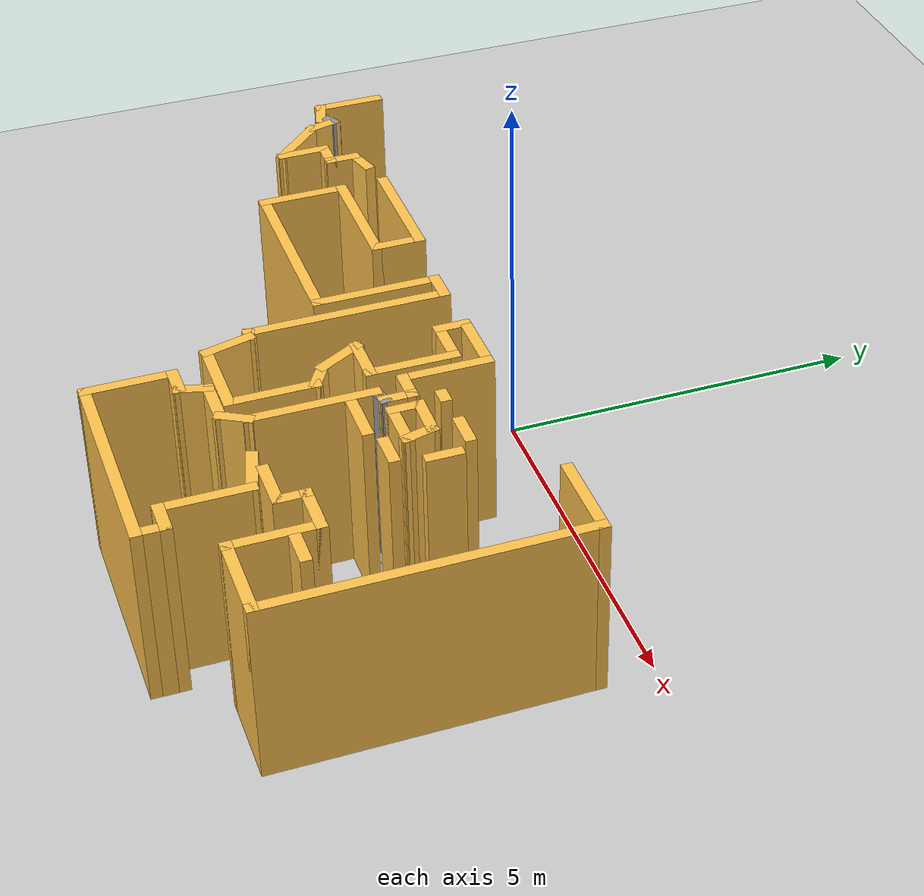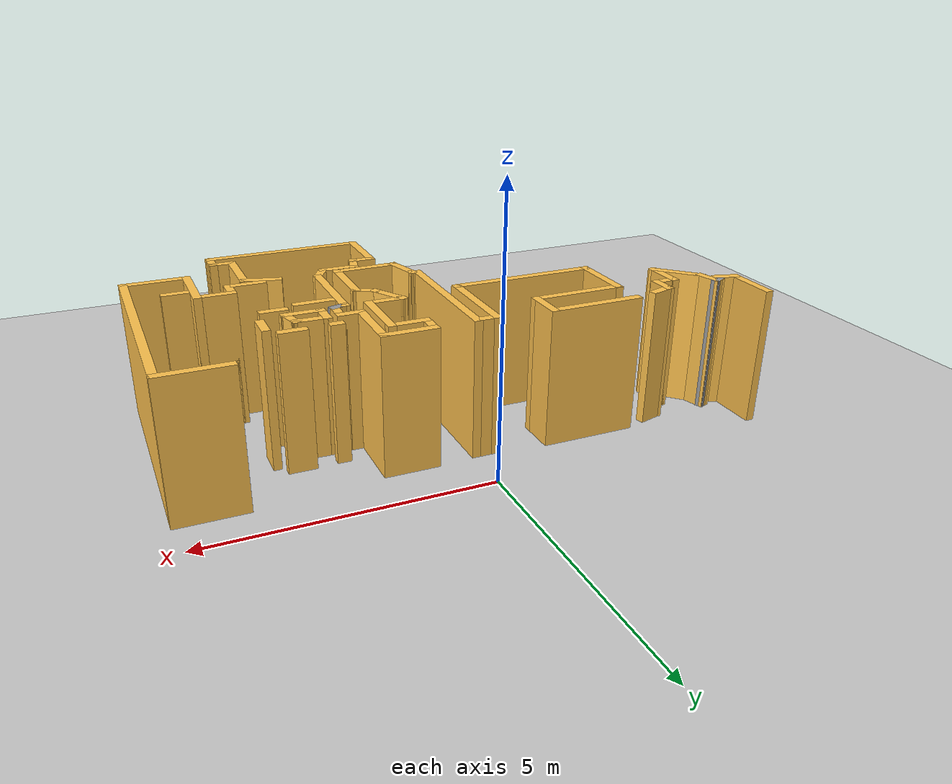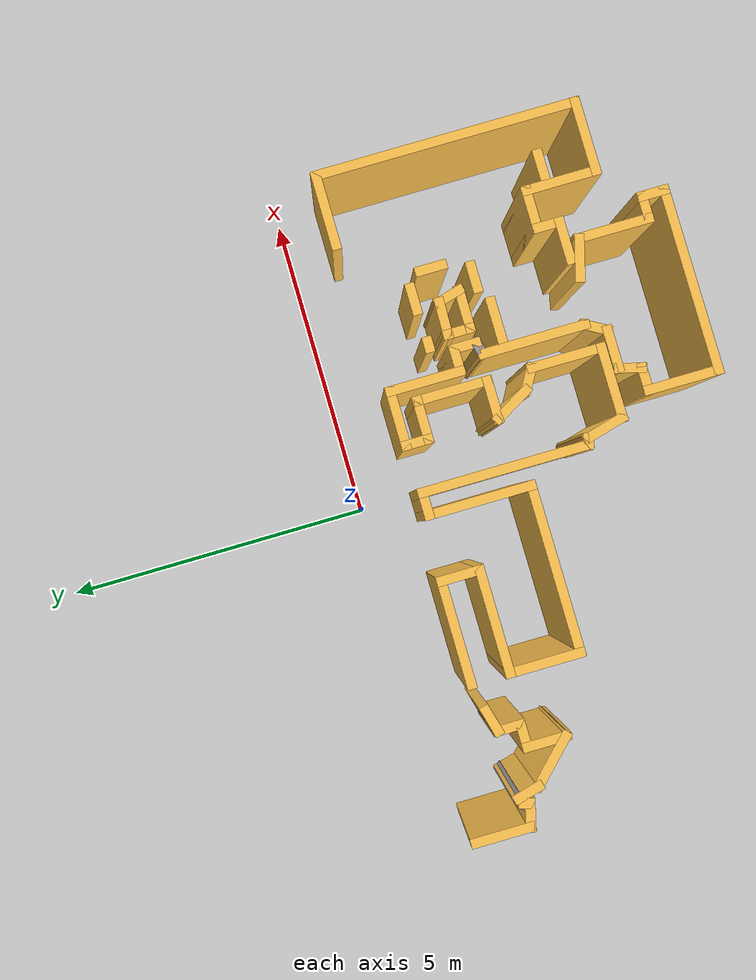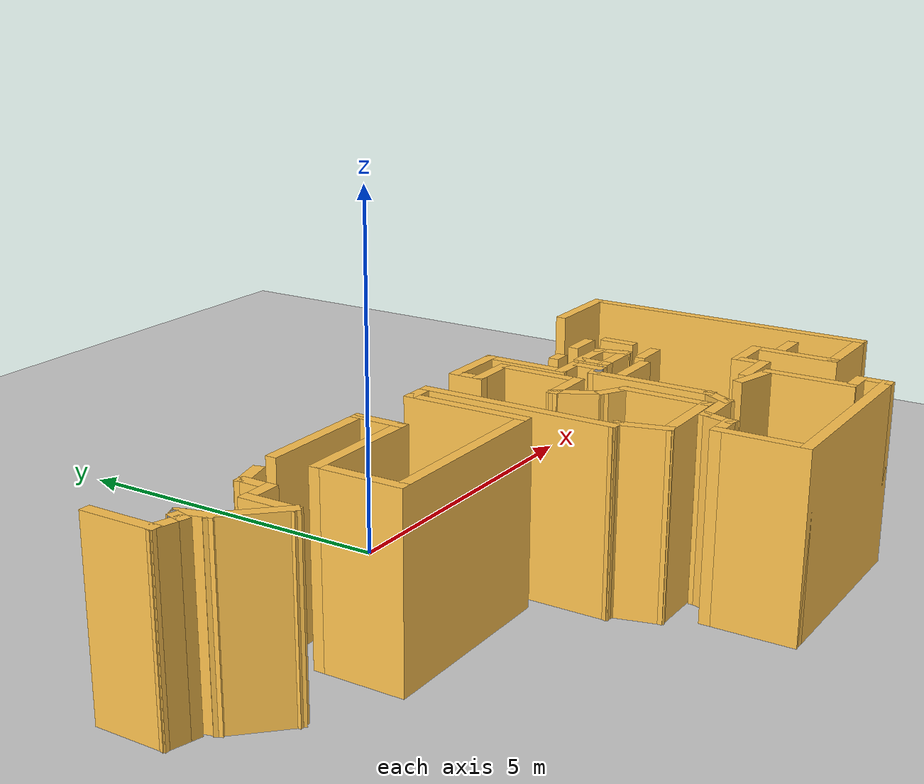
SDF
<sdf version="1.6">
 <world name="default">
  <model name="ground_plane">
   <static>1</static>
   <link name="link">
    <collision name="collision">
     <geometry><plane><normal>0 0 1</normal><size>100 100</size></plane></geometry>
     <surface>
      <contact><collide_bitmask>65535</collide_bitmask></contact>
      <friction><ode><mu>100</mu><mu2>50</mu2></ode></friction>
     </surface>
    </collision>
    <visual name="visual">
     <cast_shadows>0</cast_shadows>
     <geometry><plane><normal>0 0 1</normal><size>100 100</size></plane></geometry>
     <material>
      <script><uri>file://media/materials/scripts/gazebo.material</uri><name>Gazebo/Grey</name></script>
     </material>
    </visual>
   </link>
  </model>
  <model name="map_21">
   <pose>-0.097763 -0.060898 0 0 -0 0</pose>
   <link name="Wall_102">
    <collision name="Wall_102_Collision">
     <geometry><box><size>3 0.15 2.5</size></box></geometry>
     <pose>0 0 1.25 0 -0 0</pose>
    </collision>
    <visual name="Wall_102_Visual">
     <pose>0 0 1.25 0 -0 0</pose>
     <geometry><box><size>3 0.15 2.5</size></box></geometry>
     <material>
      <script><uri>file://media/materials/scripts/gazebo.material</uri><name>Gazebo/Grey</name></script>
      <ambient>1 0.764706 0.305882 1</ambient>
     </material>
     <meta><layer>0</layer></meta>
    </visual>
    <pose>2.05029 -5.6843 0 0 -0 0</pose>
   </link>
   <link name="Wall_103">
    <collision name="Wall_103_Collision">
     <geometry><box><size>0.5 0.15 2.5</size></box></geometry>
     <pose>0 0 1.25 0 -0 0</pose>
    </collision>
    <visual name="Wall_103_Visual">
     <pose>0 0 1.25 0 -0 0</pose>
     <geometry><box><size>0.5 0.15 2.5</size></box></geometry>
     <material>
      <script><uri>file://media/materials/scripts/gazebo.material</uri><name>Gazebo/Grey</name></script>
      <ambient>1 0.764706 0.305882 1</ambient>
     </material>
     <meta><layer>0</layer></meta>
    </visual>
    <pose>3.47528 -5.5093 0 0 -0 1.5708</pose>
   </link>
   <link name="Wall_104">
    <collision name="Wall_104_Collision">
     <geometry><box><size>0.5 0.15 2.5</size></box></geometry>
     <pose>0 0 1.25 0 -0 0</pose>
    </collision>
    <visual name="Wall_104_Visual">
     <pose>0 0 1.25 0 -0 0</pose>
     <geometry><box><size>0.5 0.15 2.5</size></box></geometry>
     <material>
      <script><uri>file://media/materials/scripts/gazebo.material</uri><name>Gazebo/Grey</name></script>
      <ambient>1 0.764706 0.305882 1</ambient>
     </material>
     <meta><layer>0</layer></meta>
    </visual>
    <pose>3.30029 -5.3343 0 0 -0 3.14159</pose>
   </link>
   <link name="Wall_107">
    <collision name="Wall_107_Collision">
     <geometry><box><size>1.25 0.15 2.5</size></box></geometry>
     <pose>0 0 1.25 0 -0 0</pose>
    </collision>
    <visual name="Wall_107_Visual">
     <pose>0 0 1.25 0 -0 0</pose>
     <geometry><box><size>1.25 0.15 2.5</size></box></geometry>
     <material>
      <script><uri>file://media/materials/scripts/gazebo.material</uri><name>Gazebo/Grey</name></script>
      <ambient>1 0.764706 0.305882 1</ambient>
     </material>
     <meta><layer>0</layer></meta>
    </visual>
    <pose>3.12528 -4.7843 0 0 -0 1.5708</pose>
   </link>
   <link name="Wall_108">
    <collision name="Wall_108_Collision">
     <geometry><box><size>0.75 0.15 2.5</size></box></geometry>
     <pose>0 0 1.25 0 -0 0</pose>
    </collision>
    <visual name="Wall_108_Visual">
     <pose>0 0 1.25 0 -0 0</pose>
     <geometry><box><size>0.75 0.15 2.5</size></box></geometry>
     <material>
      <script><uri>file://media/materials/scripts/gazebo.material</uri><name>Gazebo/Grey</name></script>
      <ambient>1 0.764706 0.305882 1</ambient>
     </material>
     <meta><layer>0</layer></meta>
    </visual>
    <pose>2.83551 -4.15666 0 0 -0 2.87979</pose>
   </link>
   <link name="Wall_110">
    <collision name="Wall_110_Collision">
     <geometry><box><size>0.75 0.15 2.5</size></box></geometry>
     <pose>0 0 1.25 0 -0 0</pose>
    </collision>
    <visual name="Wall_110_Visual">
     <pose>0 0 1.25 0 -0 0</pose>
     <geometry><box><size>0.75 0.15 2.5</size></box></geometry>
     <material>
      <script><uri>file://media/materials/scripts/gazebo.material</uri><name>Gazebo/Grey</name></script>
      <ambient>1 0.764706 0.305882 1</ambient>
     </material>
     <meta><layer>0</layer></meta>
    </visual>
    <pose>3.14776 -4.0215 0 0 -0 0</pose>
   </link>
   <link name="Wall_114">
    <collision name="Wall_114_Collision">
     <geometry><box><size>0.5 0.15 2.5</size></box></geometry>
     <pose>0 0 1.25 0 -0 0</pose>
    </collision>
    <visual name="Wall_114_Visual">
     <pose>0 0 1.25 0 -0 0</pose>
     <geometry><box><size>0.5 0.15 2.5</size></box></geometry>
     <material>
      <script><uri>file://media/materials/scripts/gazebo.material</uri><name>Gazebo/Grey</name></script>
      <ambient>1 0.764706 0.305882 1</ambient>
     </material>
     <meta><layer>0</layer></meta>
    </visual>
    <pose>3.44776 -3.8465 0 0 -0 1.5708</pose>
   </link>
   <link name="Wall_115">
    <collision name="Wall_115_Collision">
     <geometry><box><size>0.75 0.15 2.5</size></box></geometry>
     <pose>0 0 1.25 0 -0 0</pose>
    </collision>
    <visual name="Wall_115_Visual">
     <pose>0 0 1.25 0 -0 0</pose>
     <geometry><box><size>0.75 0.15 2.5</size></box></geometry>
     <material>
      <script><uri>file://media/materials/scripts/gazebo.material</uri><name>Gazebo/Grey</name></script>
      <ambient>1 0.764706 0.305882 1</ambient>
     </material>
     <meta><layer>0</layer></meta>
    </visual>
    <pose>3.74776 -3.6715 0 0 -0 0</pose>
   </link>
   <link name="Wall_116">
    <collision name="Wall_116_Collision">
     <geometry><box><size>1.25 0.15 2.5</size></box></geometry>
     <pose>0 0 1.25 0 -0 0</pose>
    </collision>
    <visual name="Wall_116_Visual">
     <pose>0 0 1.25 0 -0 0</pose>
     <geometry><box><size>1.25 0.15 2.5</size></box></geometry>
     <material>
      <script><uri>file://media/materials/scripts/gazebo.material</uri><name>Gazebo/Grey</name></script>
      <ambient>1 0.764706 0.305882 1</ambient>
     </material>
     <meta><layer>0</layer></meta>
    </visual>
    <pose>4.04776 -4.2215 0 0 -0 -1.5708</pose>
   </link>
   <link name="Wall_117">
    <collision name="Wall_117_Collision">
     <geometry><box><size>1.25 0.15 2.5</size></box></geometry>
     <pose>0 0 1.25 0 -0 0</pose>
    </collision>
    <visual name="Wall_117_Visual">
     <pose>0 0 1.25 0 -0 0</pose>
     <geometry><box><size>1.25 0.15 2.5</size></box></geometry>
     <material>
      <script><uri>file://media/materials/scripts/gazebo.material</uri><name>Gazebo/Grey</name></script>
      <ambient>1 0.764706 0.305882 1</ambient>
     </material>
     <meta><layer>0</layer></meta>
    </visual>
    <pose>4.59776 -4.7715 0 0 -0 0</pose>
   </link>
   <link name="Wall_118">
    <collision name="Wall_118_Collision">
     <geometry><box><size>4.25 0.15 2.5</size></box></geometry>
     <pose>0 0 1.25 0 -0 0</pose>
    </collision>
    <visual name="Wall_118_Visual">
     <pose>0 0 1.25 0 -0 0</pose>
     <geometry><box><size>4.25 0.15 2.5</size></box></geometry>
     <material>
      <script><uri>file://media/materials/scripts/gazebo.material</uri><name>Gazebo/Grey</name></script>
      <ambient>1 0.764706 0.305882 1</ambient>
     </material>
     <meta><layer>0</layer></meta>
    </visual>
    <pose>5.14776 -2.7215 0 0 -0 1.5708</pose>
   </link>
   <link name="Wall_119">
    <collision name="Wall_119_Collision">
     <geometry><box><size>1.25 0.15 2.5</size></box></geometry>
     <pose>0 0 1.25 0 -0 0</pose>
    </collision>
    <visual name="Wall_119_Visual">
     <pose>0 0 1.25 0 -0 0</pose>
     <geometry><box><size>1.25 0.15 2.5</size></box></geometry>
     <material>
      <script><uri>file://media/materials/scripts/gazebo.material</uri><name>Gazebo/Grey</name></script>
      <ambient>1 0.764706 0.305882 1</ambient>
     </material>
     <meta><layer>0</layer></meta>
    </visual>
    <pose>4.59776 -0.671496 0 0 -0 3.14159</pose>
   </link>
   <link name="Wall_161">
    <collision name="Wall_161_Collision">
     <geometry><box><size>0.75 0.15 2.5</size></box></geometry>
     <pose>0 0 1.25 0 -0 0</pose>
    </collision>
    <visual name="Wall_161_Visual">
     <pose>0 0 1.25 0 -0 0</pose>
     <geometry><box><size>0.75 0.15 2.5</size></box></geometry>
     <material>
      <script><uri>file://media/materials/scripts/gazebo.material</uri><name>Gazebo/Grey</name></script>
      <ambient>1 0.764706 0.305882 1</ambient>
     </material>
     <meta><layer>0</layer></meta>
    </visual>
    <pose>2.2688 -2.67992 0 0 -0 0</pose>
   </link>
   <link name="Wall_163">
    <collision name="Wall_163_Collision">
     <geometry><box><size>0.5 0.15 2.5</size></box></geometry>
     <pose>0 0 1.25 0 -0 0</pose>
    </collision>
    <visual name="Wall_163_Visual">
     <pose>0 0 1.25 0 -0 0</pose>
     <geometry><box><size>0.5 0.15 2.5</size></box></geometry>
     <material>
      <script><uri>file://media/materials/scripts/gazebo.material</uri><name>Gazebo/Grey</name></script>
      <ambient>1 0.764706 0.305882 1</ambient>
     </material>
     <meta><layer>0</layer></meta>
    </visual>
    <pose>2.99963 -2.54114 0 0 -0 0</pose>
   </link>
   <link name="Wall_165">
    <collision name="Wall_165_Collision">
     <geometry><box><size>0.5 0.15 2.5</size></box></geometry>
     <pose>0 0 1.25 0 -0 0</pose>
    </collision>
    <visual name="Wall_165_Visual">
     <pose>0 0 1.25 0 -0 0</pose>
     <geometry><box><size>0.5 0.15 2.5</size></box></geometry>
     <material>
      <script><uri>file://media/materials/scripts/gazebo.material</uri><name>Gazebo/Grey</name></script>
      <ambient>1 0.764706 0.305882 1</ambient>
     </material>
     <meta><layer>0</layer></meta>
    </visual>
    <pose>3.31037 -1.95283 0 0 -0 -1.5708</pose>
   </link>
   <link name="Wall_167">
    <collision name="Wall_167_Collision">
     <geometry><box><size>0.5 0.15 2.5</size></box></geometry>
     <pose>0 0 1.25 0 -0 0</pose>
    </collision>
    <visual name="Wall_167_Visual">
     <pose>0 0 1.25 0 -0 0</pose>
     <geometry><box><size>0.5 0.15 2.5</size></box></geometry>
     <material>
      <script><uri>file://media/materials/scripts/gazebo.material</uri><name>Gazebo/Grey</name></script>
      <ambient>1 0.764706 0.305882 1</ambient>
     </material>
     <meta><layer>0</layer></meta>
    </visual>
    <pose>2.26949 -2.09161 0 0 -0 -1.5708</pose>
   </link>
   <link name="Wall_172">
    <collision name="Wall_172_Collision">
     <geometry><box><size>0.75 0.15 2.5</size></box></geometry>
     <pose>0 0 1.25 0 -0 0</pose>
    </collision>
    <visual name="Wall_172_Visual">
     <pose>0 0 1.25 0 -0 0</pose>
     <geometry><box><size>0.75 0.15 2.5</size></box></geometry>
     <material>
      <script><uri>file://media/materials/scripts/gazebo.material</uri><name>Gazebo/Grey</name></script>
      <ambient>1 0.764706 0.305882 1</ambient>
     </material>
     <meta><layer>0</layer></meta>
    </visual>
    <pose>2.56949 -2.26661 0 0 -0 0</pose>
   </link>
   <link name="Wall_173">
    <collision name="Wall_173_Collision">
     <geometry><box><size>0.5 0.15 2.5</size></box></geometry>
     <pose>0 0 1.25 0 -0 0</pose>
    </collision>
    <visual name="Wall_173_Visual">
     <pose>0 0 1.25 0 -0 0</pose>
     <geometry><box><size>0.5 0.15 2.5</size></box></geometry>
     <material>
      <script><uri>file://media/materials/scripts/gazebo.material</uri><name>Gazebo/Grey</name></script>
      <ambient>1 0.764706 0.305882 1</ambient>
     </material>
     <meta><layer>0</layer></meta>
    </visual>
    <pose>2.8242 -2.09757 0 0 -0 1.8326</pose>
   </link>
   <link name="Wall_174">
    <collision name="Wall_174_Collision">
     <geometry><box><size>0.659553 0.15 2.5</size></box></geometry>
     <pose>0 0 1.25 0 -0 0</pose>
    </collision>
    <visual name="Wall_174_Visual">
     <pose>0 0 1.25 0 -0 0</pose>
     <geometry><box><size>0.659553 0.15 2.5</size></box></geometry>
     <material>
      <script><uri>file://media/materials/scripts/gazebo.material</uri><name>Gazebo/Grey</name></script>
      <ambient>1 0.764706 0.305882 1</ambient>
     </material>
     <meta><layer>0</layer></meta>
    </visual>
    <pose>2.5242 -1.92257 0 0 -0 3.11819</pose>
   </link>
   <link name="Wall_176">
    <collision name="Wall_176_Collision">
     <geometry><box><size>0.25 0.15 2.5</size></box></geometry>
     <pose>0 0 1.25 0 -0 0</pose>
    </collision>
    <visual name="Wall_176_Visual">
     <pose>0 0 1.25 0 -0 0</pose>
     <geometry><box><size>0.25 0.15 2.5</size></box></geometry>
     <material>
      <script><uri>file://media/materials/scripts/gazebo.material</uri><name>Gazebo/Grey</name></script>
      <ambient>1 0.764706 0.305882 1</ambient>
     </material>
     <meta><layer>0</layer></meta>
    </visual>
    <pose>2.20384 -1.59278 0 0 -0 0</pose>
   </link>
   <link name="Wall_178">
    <collision name="Wall_178_Collision">
     <geometry><box><size>0.5 0.15 2.5</size></box></geometry>
     <pose>0 0 1.25 0 -0 0</pose>
    </collision>
    <visual name="Wall_178_Visual">
     <pose>0 0 1.25 0 -0 0</pose>
     <geometry><box><size>0.5 0.15 2.5</size></box></geometry>
     <material>
      <script><uri>file://media/materials/scripts/gazebo.material</uri><name>Gazebo/Grey</name></script>
      <ambient>1 0.764706 0.305882 1</ambient>
     </material>
     <meta><layer>0</layer></meta>
    </visual>
    <pose>2.93024 -1.56965 0 0 -0 0</pose>
   </link>
   <link name="Wall_181">
    <collision name="Wall_181_Collision">
     <geometry><box><size>0.5 0.15 2.5</size></box></geometry>
     <pose>0 0 1.25 0 -0 0</pose>
    </collision>
    <visual name="Wall_181_Visual">
     <pose>0 0 1.25 0 -0 0</pose>
     <geometry><box><size>0.5 0.15 2.5</size></box></geometry>
     <material>
      <script><uri>file://media/materials/scripts/gazebo.material</uri><name>Gazebo/Grey</name></script>
      <ambient>1 0.764706 0.305882 1</ambient>
     </material>
     <meta><layer>0</layer></meta>
    </visual>
    <pose>4.36129 -3.99837 0 0 -0 3.14159</pose>
   </link>
   <link name="Wall_41">
    <collision name="Wall_41_Collision">
     <geometry><box><size>1.75 0.15 2.5</size></box></geometry>
     <pose>0 0 1.25 0 -0 0</pose>
    </collision>
    <visual name="Wall_41_Visual">
     <pose>0 0 1.25 0 -0 0</pose>
     <geometry><box><size>1.75 0.15 2.5</size></box></geometry>
     <material>
      <script><uri>file://media/materials/scripts/gazebo.material</uri><name>Gazebo/Grey</name></script>
      <ambient>1 0.764706 0.305882 1</ambient>
     </material>
     <meta><layer>0</layer></meta>
    </visual>
    <pose>-2.06472 -0.780535 0 0 -0 0</pose>
   </link>
   <link name="Wall_42">
    <collision name="Wall_42_Collision">
     <geometry><box><size>0.75 0.15 2.5</size></box></geometry>
     <pose>0 0 1.25 0 -0 0</pose>
    </collision>
    <visual name="Wall_42_Visual">
     <pose>0 0 1.25 0 -0 0</pose>
     <geometry><box><size>0.75 0.15 2.5</size></box></geometry>
     <material>
      <script><uri>file://media/materials/scripts/gazebo.material</uri><name>Gazebo/Grey</name></script>
      <ambient>1 0.764706 0.305882 1</ambient>
     </material>
     <meta><layer>0</layer></meta>
    </visual>
    <pose>-1.26472 -1.08054 0 0 -0 -1.5708</pose>
   </link>
   <link name="Wall_43">
    <collision name="Wall_43_Collision">
     <geometry><box><size>1.75 0.15 2.5</size></box></geometry>
     <pose>0 0 1.25 0 -0 0</pose>
    </collision>
    <visual name="Wall_43_Visual">
     <pose>0 0 1.25 0 -0 0</pose>
     <geometry><box><size>1.75 0.15 2.5</size></box></geometry>
     <material>
      <script><uri>file://media/materials/scripts/gazebo.material</uri><name>Gazebo/Grey</name></script>
      <ambient>1 0.764706 0.305882 1</ambient>
     </material>
     <meta><layer>0</layer></meta>
    </visual>
    <pose>-2.06472 -1.38054 0 0 -0 3.14159</pose>
   </link>
   <link name="Wall_44">
    <collision name="Wall_44_Collision">
     <geometry><box><size>1.25 0.15 2.5</size></box></geometry>
     <pose>0 0 1.25 0 -0 0</pose>
    </collision>
    <visual name="Wall_44_Visual">
     <pose>0 0 1.25 0 -0 0</pose>
     <geometry><box><size>1.25 0.15 2.5</size></box></geometry>
     <material>
      <script><uri>file://media/materials/scripts/gazebo.material</uri><name>Gazebo/Grey</name></script>
      <ambient>1 0.764706 0.305882 1</ambient>
     </material>
     <meta><layer>0</layer></meta>
    </visual>
    <pose>-2.86472 -1.93053 0 0 -0 -1.5708</pose>
   </link>
   <link name="Wall_45">
    <collision name="Wall_45_Collision">
     <geometry><box><size>2.75 0.15 2.5</size></box></geometry>
     <pose>0 0 1.25 0 -0 0</pose>
    </collision>
    <visual name="Wall_45_Visual">
     <pose>0 0 1.25 0 -0 0</pose>
     <geometry><box><size>2.75 0.15 2.5</size></box></geometry>
     <material>
      <script><uri>file://media/materials/scripts/gazebo.material</uri><name>Gazebo/Grey</name></script>
      <ambient>1 0.764706 0.305882 1</ambient>
     </material>
     <meta><layer>0</layer></meta>
    </visual>
    <pose>-1.56472 -2.48054 0 0 -0 0</pose>
   </link>
   <link name="Wall_46">
    <collision name="Wall_46_Collision">
     <geometry><box><size>1.75 0.15 2.5</size></box></geometry>
     <pose>0 0 1.25 0 -0 0</pose>
    </collision>
    <visual name="Wall_46_Visual">
     <pose>0 0 1.25 0 -0 0</pose>
     <geometry><box><size>1.75 0.15 2.5</size></box></geometry>
     <material>
      <script><uri>file://media/materials/scripts/gazebo.material</uri><name>Gazebo/Grey</name></script>
      <ambient>1 0.764706 0.305882 1</ambient>
     </material>
     <meta><layer>0</layer></meta>
    </visual>
    <pose>-0.264718 -1.68053 0 0 -0 1.5708</pose>
   </link>
   <link name="Wall_47">
    <collision name="Wall_47_Collision">
     <geometry><box><size>0.5 0.15 2.5</size></box></geometry>
     <pose>0 0 1.25 0 -0 0</pose>
    </collision>
    <visual name="Wall_47_Visual">
     <pose>0 0 1.25 0 -0 0</pose>
     <geometry><box><size>0.5 0.15 2.5</size></box></geometry>
     <material>
      <script><uri>file://media/materials/scripts/gazebo.material</uri><name>Gazebo/Grey</name></script>
      <ambient>1 0.764706 0.305882 1</ambient>
     </material>
     <meta><layer>0</layer></meta>
    </visual>
    <pose>-0.089719 -0.880535 0 0 -0 0</pose>
   </link>
   <link name="Wall_51">
    <collision name="Wall_51_Collision">
     <geometry><box><size>1 0.15 2.5</size></box></geometry>
     <pose>0 0 1.25 0 -0 0</pose>
    </collision>
    <visual name="Wall_51_Visual">
     <pose>0 0 1.25 0 -0 0</pose>
     <geometry><box><size>1 0.15 2.5</size></box></geometry>
     <material>
      <script><uri>file://media/materials/scripts/gazebo.material</uri><name>Gazebo/Grey</name></script>
      <ambient>1 0.764706 0.305882 1</ambient>
     </material>
     <meta><layer>0</layer></meta>
    </visual>
    <pose>-5.1309 -0.609856 0 0 -0 -1.5708</pose>
   </link>
   <link name="Wall_52">
    <collision name="Wall_52_Collision">
     <geometry><box><size>0.5 0.15 2.5</size></box></geometry>
     <pose>0 0 1.25 0 -0 0</pose>
    </collision>
    <visual name="Wall_52_Visual">
     <pose>0 0 1.25 0 -0 0</pose>
     <geometry><box><size>0.5 0.15 2.5</size></box></geometry>
     <material>
      <script><uri>file://media/materials/scripts/gazebo.material</uri><name>Gazebo/Grey</name></script>
      <ambient>1 0.764706 0.305882 1</ambient>
     </material>
     <meta><layer>0</layer></meta>
    </visual>
    <pose>-4.96187 -1.08015 0 0 -0 -0.261799</pose>
   </link>
   <link name="Wall_53">
    <collision name="Wall_53_Collision">
     <geometry><box><size>0.25 0.15 2.5</size></box></geometry>
     <pose>0 0 1.25 0 -0 0</pose>
    </collision>
    <visual name="Wall_53_Visual">
     <pose>0 0 1.25 0 -0 0</pose>
     <geometry><box><size>0.25 0.15 2.5</size></box></geometry>
     <material>
      <script><uri>file://media/materials/scripts/gazebo.material</uri><name>Gazebo/Grey</name></script>
      <ambient>1 0.764706 0.305882 1</ambient>
     </material>
     <meta><layer>0</layer></meta>
    </visual>
    <pose>-4.77989 -1.07715 0 0 -0 1.309</pose>
   </link>
   <link name="Wall_54">
    <collision name="Wall_54_Collision">
     <geometry><box><size>0.25 0.15 2.5</size></box></geometry>
     <pose>0 0 1.25 0 -0 0</pose>
    </collision>
    <visual name="Wall_54_Visual">
     <pose>0 0 1.25 0 -0 0</pose>
     <geometry><box><size>0.25 0.15 2.5</size></box></geometry>
     <material>
      <script><uri>file://media/materials/scripts/gazebo.material</uri><name>Gazebo/Grey</name></script>
      <ambient>1 1 1 1</ambient>
     </material>
     <meta><layer>0</layer></meta>
    </visual>
    <pose>-4.72365 -1.00385 0 0 -0 0.523599</pose>
   </link>
   <link name="Wall_55">
    <collision name="Wall_55_Collision">
     <geometry><box><size>0.5 0.15 2.5</size></box></geometry>
     <pose>0 0 1.25 0 -0 0</pose>
    </collision>
    <visual name="Wall_55_Visual">
     <pose>0 0 1.25 0 -0 0</pose>
     <geometry><box><size>0.5 0.15 2.5</size></box></geometry>
     <material>
      <script><uri>file://media/materials/scripts/gazebo.material</uri><name>Gazebo/Grey</name></script>
      <ambient>1 0.764706 0.305882 1</ambient>
     </material>
     <meta><layer>0</layer></meta>
    </visual>
    <pose>-4.63505 -1.14789 0 0 -0 -1.309</pose>
   </link>
   <link name="Wall_56">
    <collision name="Wall_56_Collision">
     <geometry><box><size>1 0.15 2.5</size></box></geometry>
     <pose>0 0 1.25 0 -0 0</pose>
    </collision>
    <visual name="Wall_56_Visual">
     <pose>0 0 1.25 0 -0 0</pose>
     <geometry><box><size>1 0.15 2.5</size></box></geometry>
     <material>
      <script><uri>file://media/materials/scripts/gazebo.material</uri><name>Gazebo/Grey</name></script>
      <ambient>1 0.764706 0.305882 1</ambient>
     </material>
     <meta><layer>0</layer></meta>
    </visual>
    <pose>-4.28924 -1.61744 0 0 -0 -0.785398</pose>
   </link>
   <link name="Wall_57">
    <collision name="Wall_57_Collision">
     <geometry><box><size>0.75 0.15 2.5</size></box></geometry>
     <pose>0 0 1.25 0 -0 0</pose>
    </collision>
    <visual name="Wall_57_Visual">
     <pose>0 0 1.25 0 -0 0</pose>
     <geometry><box><size>0.75 0.15 2.5</size></box></geometry>
     <material>
      <script><uri>file://media/materials/scripts/gazebo.material</uri><name>Gazebo/Grey</name></script>
      <ambient>1 0.764706 0.305882 1</ambient>
     </material>
     <meta><layer>0</layer></meta>
    </visual>
    <pose>-3.98872 -1.61797 0 0 -0 1.5708</pose>
   </link>
   <link name="Wall_58">
    <collision name="Wall_58_Collision">
     <geometry><box><size>0.5 0.15 2.5</size></box></geometry>
     <pose>0 0 1.25 0 -0 0</pose>
    </collision>
    <visual name="Wall_58_Visual">
     <pose>0 0 1.25 0 -0 0</pose>
     <geometry><box><size>0.5 0.15 2.5</size></box></geometry>
     <material>
      <script><uri>file://media/materials/scripts/gazebo.material</uri><name>Gazebo/Grey</name></script>
      <ambient>1 0.764706 0.305882 1</ambient>
     </material>
     <meta><layer>0</layer></meta>
    </visual>
    <pose>-3.81372 -1.31797 0 0 -0 0</pose>
   </link>
   <link name="Wall_59">
    <collision name="Wall_59_Collision">
     <geometry><box><size>0.5 0.15 2.5</size></box></geometry>
     <pose>0 0 1.25 0 -0 0</pose>
    </collision>
    <visual name="Wall_59_Visual">
     <pose>0 0 1.25 0 -0 0</pose>
     <geometry><box><size>0.5 0.15 2.5</size></box></geometry>
     <material>
      <script><uri>file://media/materials/scripts/gazebo.material</uri><name>Gazebo/Grey</name></script>
      <ambient>1 0.764706 0.305882 1</ambient>
     </material>
     <meta><layer>0</layer></meta>
    </visual>
    <pose>-3.63872 -1.14297 0 0 -0 1.5708</pose>
   </link>
   <link name="Wall_62">
    <collision name="Wall_62_Collision">
     <geometry><box><size>0.5 0.15 2.5</size></box></geometry>
     <pose>0 0 1.25 0 -0 0</pose>
    </collision>
    <visual name="Wall_62_Visual">
     <pose>0 0 1.25 0 -0 0</pose>
     <geometry><box><size>0.5 0.15 2.5</size></box></geometry>
     <material>
      <script><uri>file://media/materials/scripts/gazebo.material</uri><name>Gazebo/Grey</name></script>
      <ambient>1 0.764706 0.305882 1</ambient>
     </material>
     <meta><layer>0</layer></meta>
    </visual>
    <pose>-3.46968 -0.922671 0 0 -0 0.261799</pose>
   </link>
   <link name="Wall_65">
    <collision name="Wall_65_Collision">
     <geometry><box><size>2.75 0.15 2.5</size></box></geometry>
     <pose>0 0 1.25 0 -0 0</pose>
    </collision>
    <visual name="Wall_65_Visual">
     <pose>0 0 1.25 0 -0 0</pose>
     <geometry><box><size>2.75 0.15 2.5</size></box></geometry>
     <material>
      <script><uri>file://media/materials/scripts/gazebo.material</uri><name>Gazebo/Grey</name></script>
      <ambient>1 0.764706 0.305882 1</ambient>
     </material>
     <meta><layer>0</layer></meta>
    </visual>
    <pose>0.085282 -2.18053 0 0 -0 -1.5708</pose>
   </link>
   <link name="Wall_66">
    <collision name="Wall_66_Collision">
     <geometry><box><size>0.25 0.15 2.5</size></box></geometry>
     <pose>0 0 1.25 0 -0 0</pose>
    </collision>
    <visual name="Wall_66_Visual">
     <pose>0 0 1.25 0 -0 0</pose>
     <geometry><box><size>0.25 0.15 2.5</size></box></geometry>
     <material>
      <script><uri>file://media/materials/scripts/gazebo.material</uri><name>Gazebo/Grey</name></script>
      <ambient>1 0.764706 0.305882 1</ambient>
     </material>
     <meta><layer>0</layer></meta>
    </visual>
    <pose>0.133578 -3.49348 0 0 -0 -0.261799</pose>
   </link>
   <link name="Wall_67">
    <collision name="Wall_67_Collision">
     <geometry><box><size>0.75 0.15 2.5</size></box></geometry>
     <pose>0 0 1.25 0 -0 0</pose>
    </collision>
    <visual name="Wall_67_Visual">
     <pose>0 0 1.25 0 -0 0</pose>
     <geometry><box><size>0.75 0.15 2.5</size></box></geometry>
     <material>
      <script><uri>file://media/materials/scripts/gazebo.material</uri><name>Gazebo/Grey</name></script>
      <ambient>1 0.764706 0.305882 1</ambient>
     </material>
     <meta><layer>0</layer></meta>
    </visual>
    <pose>0.25952 -3.79619 0 0 -0 -1.309</pose>
   </link>
   <link name="Wall_70">
    <collision name="Wall_70_Collision">
     <geometry><box><size>1.25 0.15 2.5</size></box></geometry>
     <pose>0 0 1.25 0 -0 0</pose>
    </collision>
    <visual name="Wall_70_Visual">
     <pose>0 0 1.25 0 -0 0</pose>
     <geometry><box><size>1.25 0.15 2.5</size></box></geometry>
     <material>
      <script><uri>file://media/materials/scripts/gazebo.material</uri><name>Gazebo/Grey</name></script>
      <ambient>1 0.764706 0.305882 1</ambient>
     </material>
     <meta><layer>0</layer></meta>
    </visual>
    <pose>0.887166 -4.08597 0 0 -0 0</pose>
   </link>
   <link name="Wall_71">
    <collision name="Wall_71_Collision">
     <geometry><box><size>1.25 0.15 2.5</size></box></geometry>
     <pose>0 0 1.25 0 -0 0</pose>
    </collision>
    <visual name="Wall_71_Visual">
     <pose>0 0 1.25 0 -0 0</pose>
     <geometry><box><size>1.25 0.15 2.5</size></box></geometry>
     <material>
      <script><uri>file://media/materials/scripts/gazebo.material</uri><name>Gazebo/Grey</name></script>
      <ambient>1 0.764706 0.305882 1</ambient>
     </material>
     <meta><layer>0</layer></meta>
    </visual>
    <pose>1.43717 -3.53597 0 0 -0 1.5708</pose>
   </link>
   <link name="Wall_72">
    <collision name="Wall_72_Collision">
     <geometry><box><size>0.5 0.15 2.5</size></box></geometry>
     <pose>0 0 1.25 0 -0 0</pose>
    </collision>
    <visual name="Wall_72_Visual">
     <pose>0 0 1.25 0 -0 0</pose>
     <geometry><box><size>0.5 0.15 2.5</size></box></geometry>
     <material>
      <script><uri>file://media/materials/scripts/gazebo.material</uri><name>Gazebo/Grey</name></script>
      <ambient>1 0.764706 0.305882 1</ambient>
     </material>
     <meta><layer>0</layer></meta>
    </visual>
    <pose>1.28561 -2.89847 0 0 -0 2.61799</pose>
   </link>
   <link name="Wall_73">
    <collision name="Wall_73_Collision">
     <geometry><box><size>0.75 0.15 2.5</size></box></geometry>
     <pose>0 0 1.25 0 -0 0</pose>
    </collision>
    <visual name="Wall_73_Visual">
     <pose>0 0 1.25 0 -0 0</pose>
     <geometry><box><size>0.75 0.15 2.5</size></box></geometry>
     <material>
      <script><uri>file://media/materials/scripts/gazebo.material</uri><name>Gazebo/Grey</name></script>
      <ambient>1 0.764706 0.305882 1</ambient>
     </material>
     <meta><layer>0</layer></meta>
    </visual>
    <pose>0.984057 -2.55117 0 0 -0 2.0944</pose>
   </link>
   <link name="Wall_74">
    <collision name="Wall_74_Collision">
     <geometry><box><size>0.75 0.15 2.5</size></box></geometry>
     <pose>0 0 1.25 0 -0 0</pose>
    </collision>
    <visual name="Wall_74_Visual">
     <pose>0 0 1.25 0 -0 0</pose>
     <geometry><box><size>0.75 0.15 2.5</size></box></geometry>
     <material>
      <script><uri>file://media/materials/scripts/gazebo.material</uri><name>Gazebo/Grey</name></script>
      <ambient>1 0.764706 0.305882 1</ambient>
     </material>
     <meta><layer>0</layer></meta>
    </visual>
    <pose>1.13406 -2.29136 0 0 -0 0</pose>
   </link>
   <link name="Wall_75">
    <collision name="Wall_75_Collision">
     <geometry><box><size>1.25 0.15 2.5</size></box></geometry>
     <pose>0 0 1.25 0 -0 0</pose>
    </collision>
    <visual name="Wall_75_Visual">
     <pose>0 0 1.25 0 -0 0</pose>
     <geometry><box><size>1.25 0.15 2.5</size></box></geometry>
     <material>
      <script><uri>file://media/materials/scripts/gazebo.material</uri><name>Gazebo/Grey</name></script>
      <ambient>1 0.764706 0.305882 1</ambient>
     </material>
     <meta><layer>0</layer></meta>
    </visual>
    <pose>1.43406 -1.74136 0 0 -0 1.5708</pose>
   </link>
   <link name="Wall_76">
    <collision name="Wall_76_Collision">
     <geometry><box><size>0.75 0.15 2.5</size></box></geometry>
     <pose>0 0 1.25 0 -0 0</pose>
    </collision>
    <visual name="Wall_76_Visual">
     <pose>0 0 1.25 0 -0 0</pose>
     <geometry><box><size>0.75 0.15 2.5</size></box></geometry>
     <material>
      <script><uri>file://media/materials/scripts/gazebo.material</uri><name>Gazebo/Grey</name></script>
      <ambient>1 0.764706 0.305882 1</ambient>
     </material>
     <meta><layer>0</layer></meta>
    </visual>
    <pose>1.13406 -1.19136 0 0 -0 3.14159</pose>
   </link>
   <link name="Wall_77">
    <collision name="Wall_77_Collision">
     <geometry><box><size>0.5 0.15 2.5</size></box></geometry>
     <pose>0 0 1.25 0 -0 0</pose>
    </collision>
    <visual name="Wall_77_Visual">
     <pose>0 0 1.25 0 -0 0</pose>
     <geometry><box><size>0.5 0.15 2.5</size></box></geometry>
     <material>
      <script><uri>file://media/materials/scripts/gazebo.material</uri><name>Gazebo/Grey</name></script>
      <ambient>1 0.764706 0.305882 1</ambient>
     </material>
     <meta><layer>0</layer></meta>
    </visual>
    <pose>0.834057 -1.01636 0 0 -0 1.5708</pose>
   </link>
   <link name="Wall_78">
    <collision name="Wall_78_Collision">
     <geometry><box><size>1 0.15 2.5</size></box></geometry>
     <pose>0 0 1.25 0 -0 0</pose>
    </collision>
    <visual name="Wall_78_Visual">
     <pose>0 0 1.25 0 -0 0</pose>
     <geometry><box><size>1 0.15 2.5</size></box></geometry>
     <material>
      <script><uri>file://media/materials/scripts/gazebo.material</uri><name>Gazebo/Grey</name></script>
      <ambient>1 0.764706 0.305882 1</ambient>
     </material>
     <meta><layer>0</layer></meta>
    </visual>
    <pose>1.25906 -0.841357 0 0 -0 0</pose>
   </link>
   <link name="Wall_79">
    <collision name="Wall_79_Collision">
     <geometry><box><size>1.25 0.15 2.5</size></box></geometry>
     <pose>0 0 1.25 0 -0 0</pose>
    </collision>
    <visual name="Wall_79_Visual">
     <pose>0 0 1.25 0 -0 0</pose>
     <geometry><box><size>1.25 0.15 2.5</size></box></geometry>
     <material>
      <script><uri>file://media/materials/scripts/gazebo.material</uri><name>Gazebo/Grey</name></script>
      <ambient>1 0.764706 0.305882 1</ambient>
     </material>
     <meta><layer>0</layer></meta>
    </visual>
    <pose>1.68406 -1.39136 0 0 -0 -1.5708</pose>
   </link>
   <link name="Wall_84">
    <collision name="Wall_84_Collision">
     <geometry><box><size>0.5 0.15 2.5</size></box></geometry>
     <pose>0 0 1.25 0 -0 0</pose>
    </collision>
    <visual name="Wall_84_Visual">
     <pose>0 0 1.25 0 -0 0</pose>
     <geometry><box><size>0.5 0.15 2.5</size></box></geometry>
     <material>
      <script><uri>file://media/materials/scripts/gazebo.material</uri><name>Gazebo/Grey</name></script>
      <ambient>1 0.764706 0.305882 1</ambient>
     </material>
     <meta><layer>0</layer></meta>
    </visual>
    <pose>1.85906 -1.94136 0 0 -0 0</pose>
   </link>
   <link name="Wall_85">
    <collision name="Wall_85_Collision">
     <geometry><box><size>0.5 0.15 2.5</size></box></geometry>
     <pose>0 0 1.25 0 -0 0</pose>
    </collision>
    <visual name="Wall_85_Visual">
     <pose>0 0 1.25 0 -0 0</pose>
     <geometry><box><size>0.5 0.15 2.5</size></box></geometry>
     <material>
      <script><uri>file://media/materials/scripts/gazebo.material</uri><name>Gazebo/Grey</name></script>
      <ambient>1 0.764706 0.305882 1</ambient>
     </material>
     <meta><layer>0</layer></meta>
    </visual>
    <pose>2.03406 -2.11636 0 0 -0 -1.5708</pose>
   </link>
   <link name="Wall_88">
    <collision name="Wall_88_Collision">
     <geometry><box><size>0.25 0.15 2.5</size></box></geometry>
     <pose>0 0 1.25 0 -0 0</pose>
    </collision>
    <visual name="Wall_88_Visual">
     <pose>0 0 1.25 0 -0 0</pose>
     <geometry><box><size>0.25 0.15 2.5</size></box></geometry>
     <material>
      <script><uri>file://media/materials/scripts/gazebo.material</uri><name>Gazebo/Grey</name></script>
      <ambient>1 1 1 1</ambient>
     </material>
     <meta><layer>0</layer></meta>
    </visual>
    <pose>1.98576 -2.3043 0 0 -0 -2.87979</pose>
   </link>
   <link name="Wall_91">
    <collision name="Wall_91_Collision">
     <geometry><box><size>0.25 0.15 2.5</size></box></geometry>
     <pose>0 0 1.25 0 -0 0</pose>
    </collision>
    <visual name="Wall_91_Visual">
     <pose>0 0 1.25 0 -0 0</pose>
     <geometry><box><size>0.25 0.15 2.5</size></box></geometry>
     <material>
      <script><uri>file://media/materials/scripts/gazebo.material</uri><name>Gazebo/Grey</name></script>
      <ambient>1 0.764706 0.305882 1</ambient>
     </material>
     <meta><layer>0</layer></meta>
    </visual>
    <pose>1.98576 -2.3043 0 0 -0 -2.87979</pose>
   </link>
   <link name="Wall_92">
    <collision name="Wall_92_Collision">
     <geometry><box><size>0.25 0.15 2.5</size></box></geometry>
     <pose>0 0 1.25 0 -0 0</pose>
    </collision>
    <visual name="Wall_92_Visual">
     <pose>0 0 1.25 0 -0 0</pose>
     <geometry><box><size>0.25 0.15 2.5</size></box></geometry>
     <material>
      <script><uri>file://media/materials/scripts/gazebo.material</uri><name>Gazebo/Grey</name></script>
      <ambient>1 0.764706 0.305882 1</ambient>
     </material>
     <meta><layer>0</layer></meta>
    </visual>
    <pose>1.88917 -2.33018 0 0 -0 -2.87979</pose>
   </link>
   <link name="Wall_93">
    <collision name="Wall_93_Collision">
     <geometry><box><size>1.75 0.15 2.5</size></box></geometry>
     <pose>0 0 1.25 0 -0 0</pose>
    </collision>
    <visual name="Wall_93_Visual">
     <pose>0 0 1.25 0 -0 0</pose>
     <geometry><box><size>1.75 0.15 2.5</size></box></geometry>
     <material>
      <script><uri>file://media/materials/scripts/gazebo.material</uri><name>Gazebo/Grey</name></script>
      <ambient>1 0.764706 0.305882 1</ambient>
     </material>
     <meta><layer>0</layer></meta>
    </visual>
    <pose>1.84087 -3.14312 0 0 -0 -1.5708</pose>
   </link>
   <link name="Wall_94">
    <collision name="Wall_94_Collision">
     <geometry><box><size>0.5 0.15 2.5</size></box></geometry>
     <pose>0 0 1.25 0 -0 0</pose>
    </collision>
    <visual name="Wall_94_Visual">
     <pose>0 0 1.25 0 -0 0</pose>
     <geometry><box><size>0.5 0.15 2.5</size></box></geometry>
     <material>
      <script><uri>file://media/materials/scripts/gazebo.material</uri><name>Gazebo/Grey</name></script>
      <ambient>1 0.764706 0.305882 1</ambient>
     </material>
     <meta><layer>0</layer></meta>
    </visual>
    <pose>1.75337 -4.09467 0 0 -0 -2.0944</pose>
   </link>
   <link name="Wall_95">
    <collision name="Wall_95_Collision">
     <geometry><box><size>0.75 0.15 2.5</size></box></geometry>
     <pose>0 0 1.25 0 -0 0</pose>
    </collision>
    <visual name="Wall_95_Visual">
     <pose>0 0 1.25 0 -0 0</pose>
     <geometry><box><size>0.75 0.15 2.5</size></box></geometry>
     <material>
      <script><uri>file://media/materials/scripts/gazebo.material</uri><name>Gazebo/Grey</name></script>
      <ambient>1 0.764706 0.305882 1</ambient>
     </material>
     <meta><layer>0</layer></meta>
    </visual>
    <pose>1.36587 -4.24623 0 0 -0 3.14159</pose>
   </link>
   <link name="Wall_96">
    <collision name="Wall_96_Collision">
     <geometry><box><size>0.5 0.15 2.5</size></box></geometry>
     <pose>0 0 1.25 0 -0 0</pose>
    </collision>
    <visual name="Wall_96_Visual">
     <pose>0 0 1.25 0 -0 0</pose>
     <geometry><box><size>0.5 0.15 2.5</size></box></geometry>
     <material>
      <script><uri>file://media/materials/scripts/gazebo.material</uri><name>Gazebo/Grey</name></script>
      <ambient>1 0.764706 0.305882 1</ambient>
     </material>
     <meta><layer>0</layer></meta>
    </visual>
    <pose>1.02058 -4.41527 0 0 -0 -1.8326</pose>
   </link>
   <link name="Wall_97">
    <collision name="Wall_97_Collision">
     <geometry><box><size>0.5 0.15 2.5</size></box></geometry>
     <pose>0 0 1.25 0 -0 0</pose>
    </collision>
    <visual name="Wall_97_Visual">
     <pose>0 0 1.25 0 -0 0</pose>
     <geometry><box><size>0.5 0.15 2.5</size></box></geometry>
     <material>
      <script><uri>file://media/materials/scripts/gazebo.material</uri><name>Gazebo/Grey</name></script>
      <ambient>1 0.764706 0.305882 1</ambient>
     </material>
     <meta><layer>0</layer></meta>
    </visual>
    <pose>0.800285 -4.5843 0 0 -0 3.14159</pose>
   </link>
   <link name="Wall_98">
    <collision name="Wall_98_Collision">
     <geometry><box><size>1.25 0.15 2.5</size></box></geometry>
     <pose>0 0 1.25 0 -0 0</pose>
    </collision>
    <visual name="Wall_98_Visual">
     <pose>0 0 1.25 0 -0 0</pose>
     <geometry><box><size>1.25 0.15 2.5</size></box></geometry>
     <material>
      <script><uri>file://media/materials/scripts/gazebo.material</uri><name>Gazebo/Grey</name></script>
      <ambient>1 0.764706 0.305882 1</ambient>
     </material>
     <meta><layer>0</layer></meta>
    </visual>
    <pose>0.625285 -5.1343 0 0 -0 -1.5708</pose>
   </link>
   <static>1</static>
  </model>
 </world>
</sdf>
